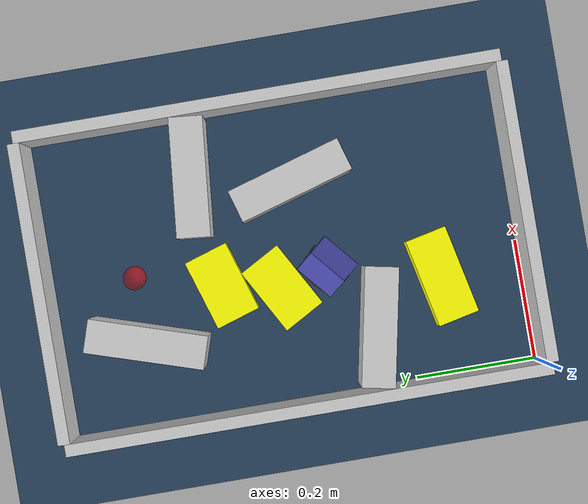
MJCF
<?xml version='1.0' encoding='utf-8'?>
<mujoco model="real_buildable">
  <compiler angle="degree" />
  <option timestep="0.002" integrator="implicitfast" iterations="100" cone="elliptic" />
  <default>
    <geom density="1" />
  </default>
  <asset>
    <texture builtin="gradient" height="3072" rgb1="0.3 0.5 0.7" rgb2="0 0 0" type="skybox" width="512" />
    <texture builtin="checker" height="300" mark="edge" markrgb="0.8 0.8 0.8" name="groundplane" rgb1="0.2 0.3 0.4" rgb2="0.1 0.2 0.3" type="2d" width="300" />
    <material name="groundplane" reflectance="0.2" texrepeat="5 5" texture="groundplane" texuniform="true" />
  </asset>
  <worldbody>
    <light dir="0 0 -1" directional="true" pos="0 0 1.5" />
    <geom name="floor" type="plane" condim="4" friction="0.5 0.005 0.001" material="groundplane" size="0 0 0.05" />
    <body name="walls">
      <geom name="wall_boundary_left" type="box" condim="4" friction="1.0 0.005 0.0001" rgba="0.8 0.8 0.8 1" pos="-0.010000 0.387500 0.050000" euler="0 0 0.000000" size="0.010000 0.397500 0.050000" />
      <geom name="wall_boundary_right" type="box" condim="4" friction="1.0 0.005 0.0001" rgba="0.8 0.8 0.8 1" pos="0.500000 0.387500 0.050000" euler="0 0 0.000000" size="0.010000 0.397500 0.050000" />
      <geom name="wall_boundary_bottom" type="box" condim="4" friction="1.0 0.005 0.0001" rgba="0.8 0.8 0.8 1" pos="0.245000 -0.010000 0.050000" euler="0 0 0.000000" size="0.245000 0.010000 0.050000" />
      <geom name="wall_boundary_top" type="box" condim="4" friction="1.0 0.005 0.0001" rgba="0.8 0.8 0.8 1" pos="0.245000 0.785000 0.050000" euler="0 0 0.000000" size="0.245000 0.010000 0.050000" />
      <geom name="wall_inner_1" type="box" condim="4" friction="1.0 0.005 0.0001" rgba="0.8 0.8 0.8 1" pos="0.100990 0.253420 0.050000" euler="0 0 -11.237192" size="0.097500 0.027500 0.050000" />
      <geom name="wall_inner_2" type="box" condim="4" friction="1.0 0.005 0.0001" rgba="0.8 0.8 0.8 1" pos="0.357933 0.356856 0.050000" euler="0 0 106.467874" size="0.097500 0.027500 0.050000" />
      <geom name="wall_inner_3" type="box" condim="4" friction="1.0 0.005 0.0001" rgba="0.8 0.8 0.8 1" pos="0.390000 0.515000 0.050000" euler="0 0 174.400000" size="0.097500 0.027500 0.050000" />
      <geom name="wall_inner_4" type="box" condim="4" friction="1.0 0.005 0.0001" rgba="0.8 0.8 0.8 1" pos="0.137000 0.629000 0.050000" euler="0 0 72.300000" size="0.097500 0.027500 0.050000" />
    </body>
    <body name="car" pos="0.21069740201039588 0.31981312629910724 0.01" quat="0.41950329389616875 0 0 0.90775381376795361">
      <freejoint name="car_freejoint" />
      <inertial pos="0 0 0.0375" mass="0.35" diaginertia="0.000266 0.000266 0.000286" />
      <geom name="front_chassis_collision" type="box" pos="0.0175 0 0.0375" size="0.0175 0.035 0.0325" rgba="0.3 0.3 0.7 1" />
      <geom name="rear_chassis_collision" type="box" pos="-0.0175 0 0.0375" size="0.0175 0.035 0.0325" rgba="0.25 0.25 0.6 1" />
      <geom name="front_marker" type="box" pos="0.034 0 0.0505" size="0.002 0.015 0.01" rgba="1 0.2 0.2 1" contype="0" conaffinity="0" />
      <body name="rear_support_body" pos="-0.03 0 0.0025">
        <joint name="rear_caster_joint" type="ball" damping="0.0001" />
        <inertial pos="0 0 0" mass="0.025" diaginertia="0.000001 0.000001 0.000001" />
        <geom name="rear_support" type="sphere" pos="0 0 0" size="0.0025" friction="0 0 0" rgba="0.7 0.1 0.1 1" />
      </body>
      <body name="front_support_body" pos="0.03 0 0.0025">
        <joint name="front_caster_joint" type="ball" damping="0.0001" />
        <inertial pos="0 0 0" mass="0.025" diaginertia="0.000001 0.000001 0.000001" />
        <geom name="front_support" type="sphere" pos="0 0 0" size="0.0025" friction="0 0 0" rgba="0.1 0.7 0.1 1" />
      </body>
      <body name="left_wheel" pos="0 0.0375 0.015">
        <inertial pos="0 0 0" mass="0.05" diaginertia="0.000003 0.000006 0.000003" />
        <joint name="left_wheel_joint" type="hinge" axis="0 1 0" damping="0.01" armature="0.0001" />
        <geom name="left_wheel_collision" type="cylinder" size="0.015 0.0005" euler="90 0 0" rgba="0.1 0.1 0.1 1" />
      </body>
      <body name="right_wheel" pos="0 -0.0375 0.015">
        <inertial pos="0 0 0" mass="0.05" diaginertia="0.000003 0.000006 0.000003" />
        <joint name="right_wheel_joint" type="hinge" axis="0 1 0" damping="0.01" armature="0.0001" />
        <geom name="right_wheel_collision" type="cylinder" size="0.015 0.0005" euler="90 0 0" rgba="0.1 0.1 0.1 1" />
      </body>
    </body>
    <body name="obstacle_0_movable">
      <geom name="obstacle_0_movable" condim="4" pos="0.18840902692346506 0.39867870076309259 0.025000000000000001" friction="1 0.005 0.0001" rgba="1 1 0 1" size="0.037500 0.060000 0.025000" type="box" mass="0.1" quat="0.50711332239484708 0 0 0.86187938729828073" />
      <joint type="free" />
    </body>
    <body name="obstacle_1_movable">
      <geom name="obstacle_1_movable" condim="4" pos="0.20844032583299987 0.49545029583881262 0.025000000000000001" friction="1 0.005 0.0001" rgba="1 1 0 1" size="0.037500 0.060000 0.025000" type="box" mass="0.1" quat="0.80676649893356278 0 0 -0.59087038866276054" />
      <joint type="free" />
    </body>
    <body name="obstacle_2_movable">
      <geom name="obstacle_2_movable" condim="4" pos="0.16282400000000016 0.13467599999999982 0.02" friction="1 0.005 0.0001" rgba="1 1 0 1" size="0.035000 0.075000 0.020000" type="box" mass="0.1" quat="0.62752278280767393 0 0 0.77859820000903734" />
      <joint type="free" />
    </body>
    <site name="goal" type="sphere" pos="0.245000 0.640000 0.0" size="0.02" rgba="1 0 0 0.5" />
  </worldbody>
  <actuator>
    <velocity name="left_wheel_drive" joint="left_wheel_joint" ctrlrange="-25 25" kv="0.75" forcerange="-0.5 0.5" />
    <velocity name="right_wheel_drive" joint="right_wheel_joint" ctrlrange="-25 25" kv="0.75" forcerange="-0.5 0.5" />
  </actuator>
</mujoco>
